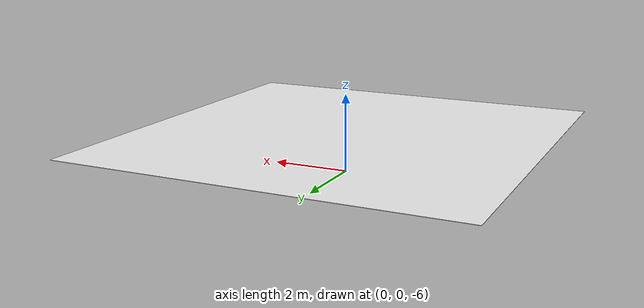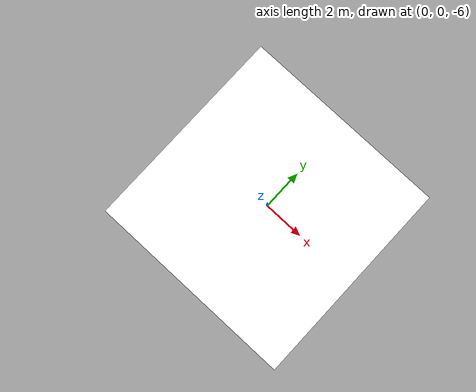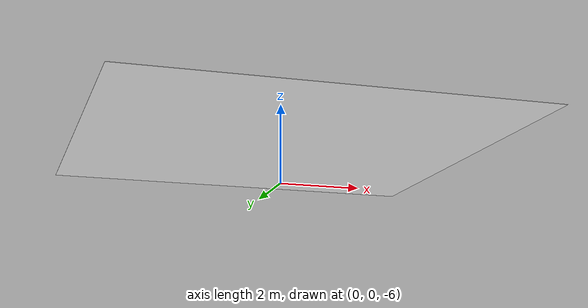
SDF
<?xml version="1.0"?>
<sdf version="1.7">
  <model name="floor">
    <pose>0 0 -5 0 0 0</pose>
    <link name="floor">
      <visual name="floor">
        <geometry>
          <box>
            <size>10 10 .01</size>
          </box>
        </geometry>
        <material>
          <diffuse>255 255 255 0</diffuse>
        </material>
      </visual>
      <collision name="floor_collision">
        <geometry>
          <box>
            <size>10 10 .01</size>
          </box>
        </geometry>
        <surface>
            <bounce>
                <restitution_coefficient> 1.0 </restitution_coefficient>
                <threshold>0.</threshold>
            </bounce>
        </surface>
      </collision>
    </link>
    <static>1</static>
  </model>
</sdf>
